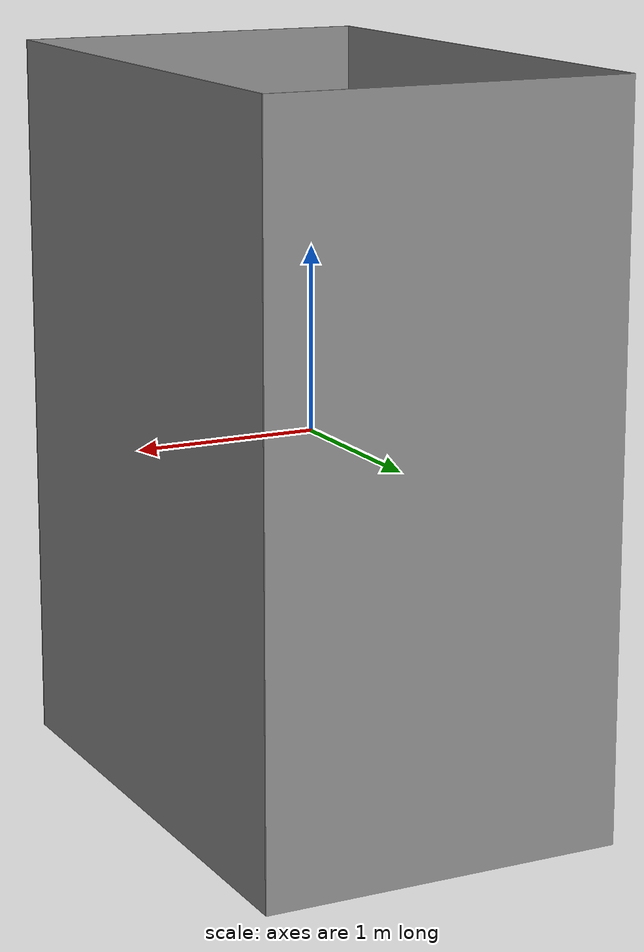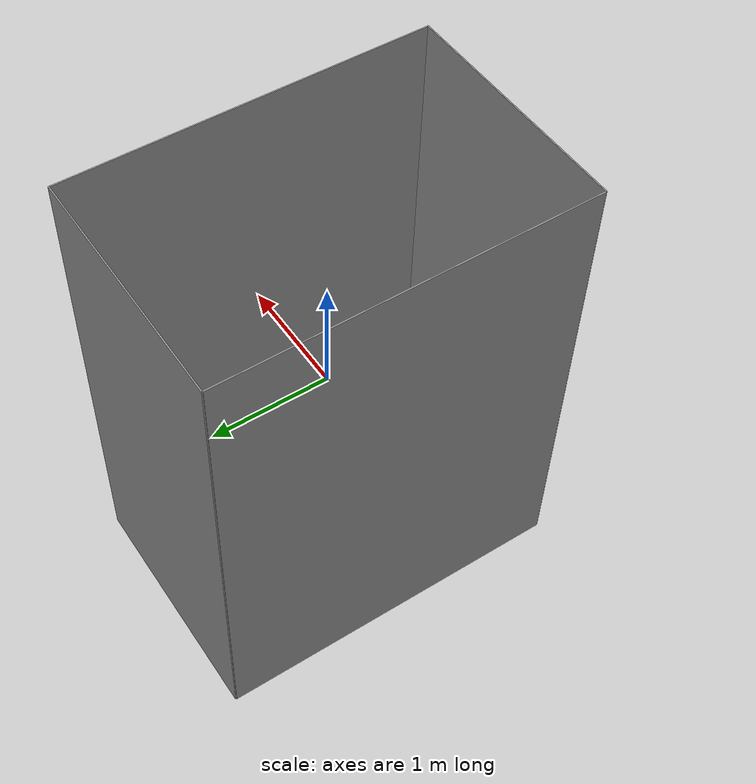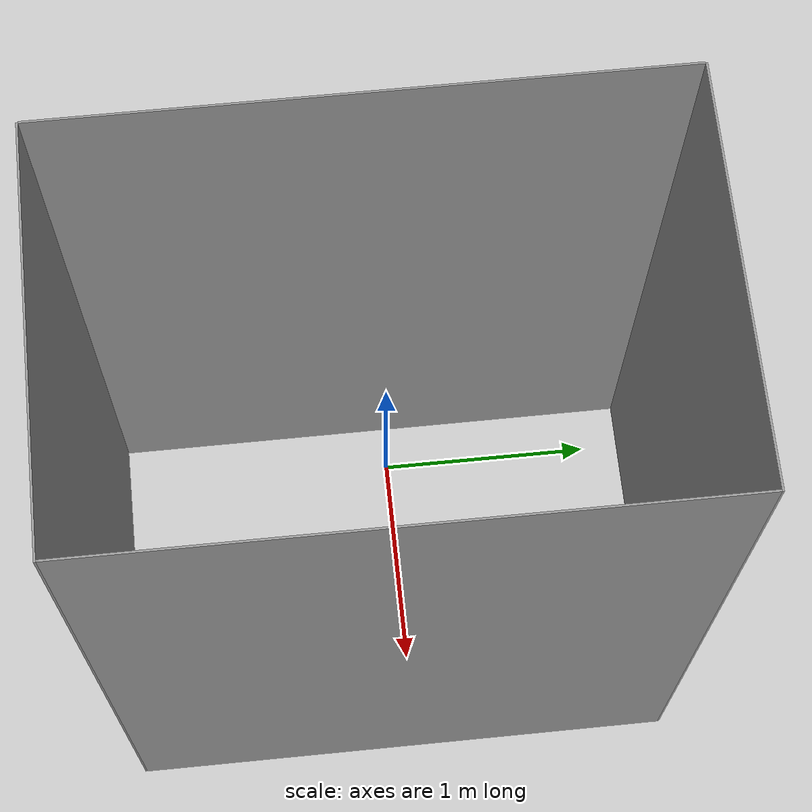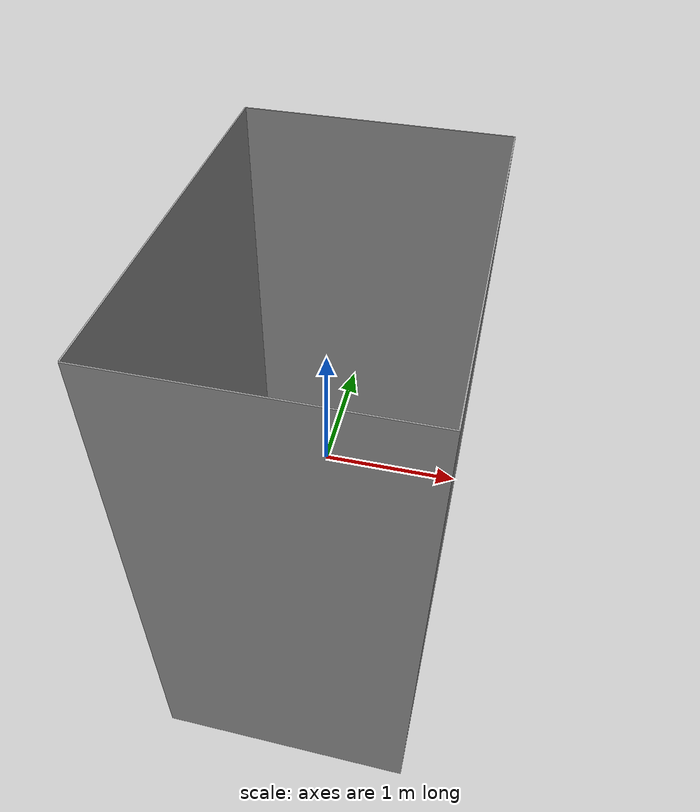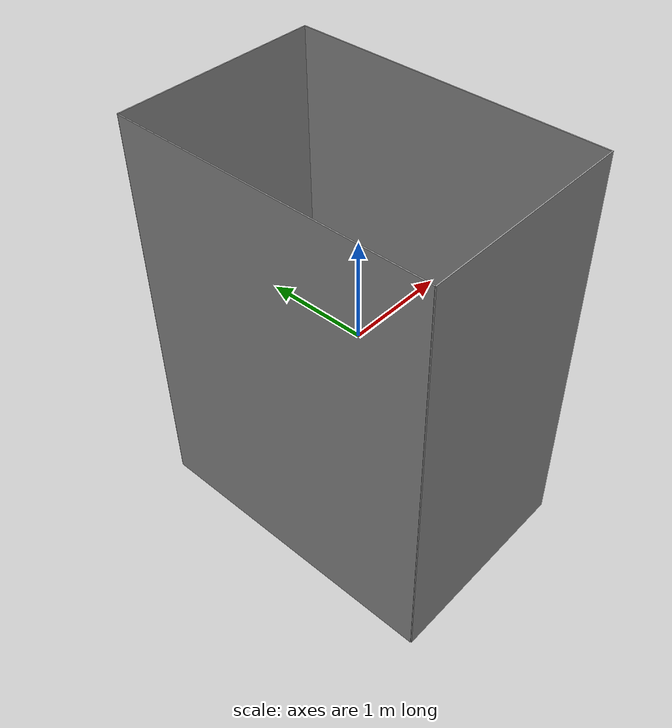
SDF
<?xml version='1.0'?>
<sdf version='1.7'>
  <model name='wall'>
    <link name='link_0'>
      <inertial>
        <mass>1</mass>
        <inertia>
          <ixx>0.166667</ixx>
          <ixy>0</ixy>
          <ixz>0</ixz>
          <iyy>0.166667</iyy>
          <iyz>0</iyz>
          <izz>0.166667</izz>
        </inertia>
        <pose>0 0 0 0 -0 0</pose>
      </inertial>
      <pose>0.99625 0 0 0 -0 0</pose>
      <gravity>0</gravity>
      <self_collide>0</self_collide>
      <kinematic>0</kinematic>
      <enable_wind>0</enable_wind>
      <visual name='visual'>
        <pose>0 0 0 0 -0 0</pose>
        <geometry>
          <box>
            <size>0.01 3 4</size>
          </box>
        </geometry>
        <material>
          <lighting>1</lighting>
          <script>
            <uri>file://media/materials/scripts/gazebo.material</uri>
            <name>Gazebo/Grey</name>
          </script>
          <shader type='pixel'>
            <normal_map>__default__</normal_map>
          </shader>
          <ambient>0.3 0.3 0.3 1</ambient>
          <diffuse>0.7 0.7 0.7 1</diffuse>
          <specular>0.01 0.01 0.01 1</specular>
          <emissive>0 0 0 1</emissive>
        </material>
        <transparency>0</transparency>
        <cast_shadows>1</cast_shadows>
      </visual>
    </link>
    <link name='link_0_clone'>
      <inertial>
        <mass>1</mass>
        <inertia>
          <ixx>0.166667</ixx>
          <ixy>0</ixy>
          <ixz>0</ixz>
          <iyy>0.166667</iyy>
          <iyz>0</iyz>
          <izz>0.166667</izz>
        </inertia>
        <pose>0 0 0 0 -0 0</pose>
      </inertial>
      <pose>0.00125 -1.505 0 0 -0 0</pose>
      <gravity>0</gravity>
      <self_collide>0</self_collide>
      <kinematic>0</kinematic>
      <enable_wind>0</enable_wind>
      <visual name='visual'>
        <pose>0 0 0 0 -0 0</pose>
        <geometry>
          <box>
            <size>2 0.01 4</size>
          </box>
        </geometry>
        <material>
          <lighting>1</lighting>
          <script>
            <uri>file://media/materials/scripts/gazebo.material</uri>
            <name>Gazebo/Grey</name>
          </script>
          <shader type='pixel'>
            <normal_map>__default__</normal_map>
          </shader>
          <ambient>0.3 0.3 0.3 1</ambient>
          <diffuse>0.7 0.7 0.7 1</diffuse>
          <specular>0.01 0.01 0.01 1</specular>
          <emissive>0 0 0 1</emissive>
        </material>
        <transparency>0</transparency>
        <cast_shadows>1</cast_shadows>
      </visual>
    </link>
    <link name='link_0_clone_1'>
      <inertial>
        <mass>1</mass>
        <inertia>
          <ixx>0.166667</ixx>
          <ixy>0</ixy>
          <ixz>0</ixz>
          <iyy>0.166667</iyy>
          <iyz>0</iyz>
          <izz>0.166667</izz>
        </inertia>
        <pose>0 0 0 0 -0 0</pose>
      </inertial>
      <pose>-0.99875 0 0 0 -0 0</pose>
      <gravity>0</gravity>
      <self_collide>0</self_collide>
      <kinematic>0</kinematic>
      <enable_wind>0</enable_wind>
      <visual name='visual'>
        <pose>0 0 0 0 -0 0</pose>
        <geometry>
          <box>
            <size>0.01 3 4</size>
          </box>
        </geometry>
        <material>
          <lighting>1</lighting>
          <script>
            <uri>file://media/materials/scripts/gazebo.material</uri>
            <name>Gazebo/Grey</name>
          </script>
          <shader type='pixel'>
            <normal_map>__default__</normal_map>
          </shader>
          <ambient>0.3 0.3 0.3 1</ambient>
          <diffuse>0.7 0.7 0.7 1</diffuse>
          <specular>0.01 0.01 0.01 1</specular>
          <emissive>0 0 0 1</emissive>
        </material>
        <transparency>0</transparency>
        <cast_shadows>1</cast_shadows>
      </visual>
    </link>
    <link name='link_0_clone_clone'>
      <inertial>
        <mass>1</mass>
        <inertia>
          <ixx>0.166667</ixx>
          <ixy>0</ixy>
          <ixz>0</ixz>
          <iyy>0.166667</iyy>
          <iyz>0</iyz>
          <izz>0.166667</izz>
        </inertia>
        <pose>0 0 0 0 -0 0</pose>
      </inertial>
      <pose>0.00125 1.505 0 0 -0 0</pose>
      <gravity>0</gravity>
      <self_collide>0</self_collide>
      <kinematic>0</kinematic>
      <enable_wind>0</enable_wind>
      <visual name='visual'>
        <pose>0 0 0 0 -0 0</pose>
        <geometry>
          <box>
            <size>2 0.01 4</size>
          </box>
        </geometry>
        <material>
          <lighting>1</lighting>
          <script>
            <uri>file://media/materials/scripts/gazebo.material</uri>
            <name>Gazebo/Grey</name>
          </script>
          <shader type='pixel'>
            <normal_map>__default__</normal_map>
          </shader>
          <ambient>0.3 0.3 0.3 1</ambient>
          <diffuse>0.7 0.7 0.7 1</diffuse>
          <specular>0.01 0.01 0.01 1</specular>
          <emissive>0 0 0 1</emissive>
        </material>
        <transparency>0</transparency>
        <cast_shadows>1</cast_shadows>
      </visual>
    </link>
    <joint name='link_0_JOINT_0' type='fixed'>
      <parent>link_0</parent>
      <child>link_0_clone</child>
      <pose>0 0 0 0 -0 0</pose>
      <physics>
        <ode>
          <limit>
            <cfm>0</cfm>
            <erp>0.2</erp>
          </limit>
          <suspension>
            <cfm>0</cfm>
            <erp>0.2</erp>
          </suspension>
        </ode>
      </physics>
    </joint>
    <joint name='link_0_JOINT_2' type='fixed'>
      <parent>link_0</parent>
      <child>link_0_clone_clone</child>
      <pose>0 0 0 0 -0 0</pose>
      <physics>
        <ode>
          <limit>
            <cfm>0</cfm>
            <erp>0.2</erp>
          </limit>
          <suspension>
            <cfm>0</cfm>
            <erp>0.2</erp>
          </suspension>
        </ode>
      </physics>
    </joint>
    <joint name='link_0_clone_1_JOINT_3' type='fixed'>
      <parent>link_0_clone_1</parent>
      <child>link_0_clone_clone</child>
      <pose>0 0 0 0 -0 0</pose>
      <physics>
        <ode>
          <limit>
            <cfm>0</cfm>
            <erp>0.2</erp>
          </limit>
          <suspension>
            <cfm>0</cfm>
            <erp>0.2</erp>
          </suspension>
        </ode>
      </physics>
    </joint>
    <joint name='link_0_clone_1_JOINT_4' type='fixed'>
      <parent>link_0_clone_1</parent>
      <child>link_0_clone</child>
      <pose>0 0 0 0 -0 0</pose>
      <physics>
        <ode>
          <limit>
            <cfm>0</cfm>
            <erp>0.2</erp>
          </limit>
          <suspension>
            <cfm>0</cfm>
            <erp>0.2</erp>
          </suspension>
        </ode>
      </physics>
    </joint>
    <static>0</static>
    <allow_auto_disable>1</allow_auto_disable>
  </model>
</sdf>
